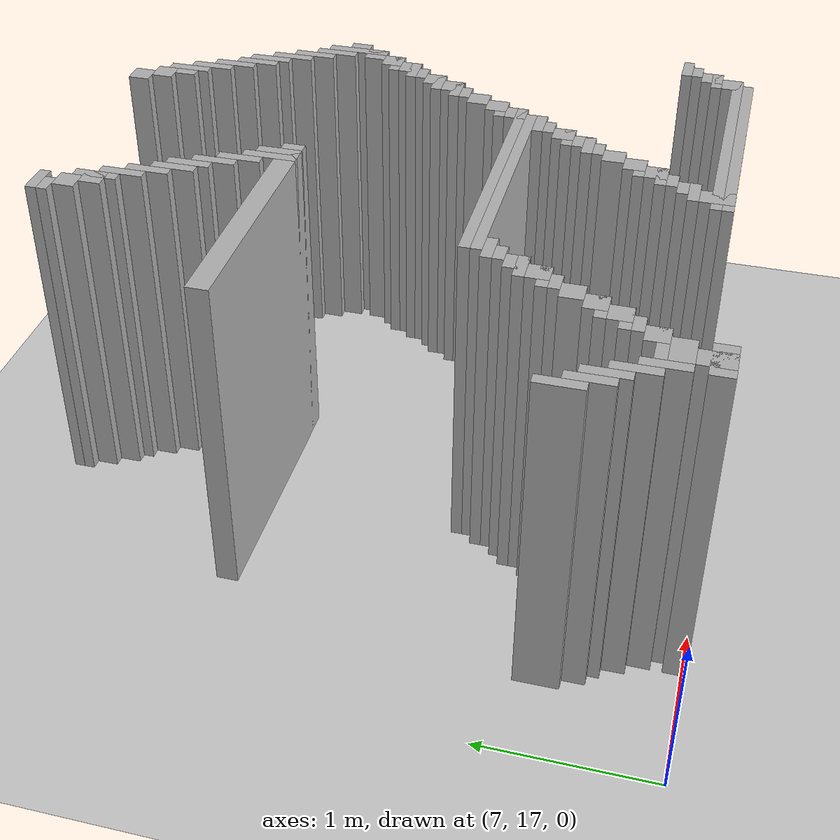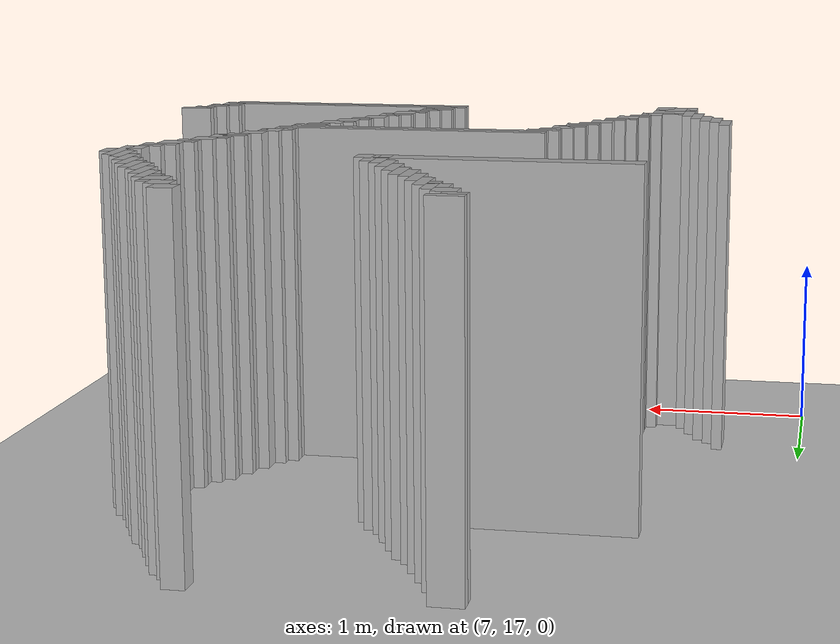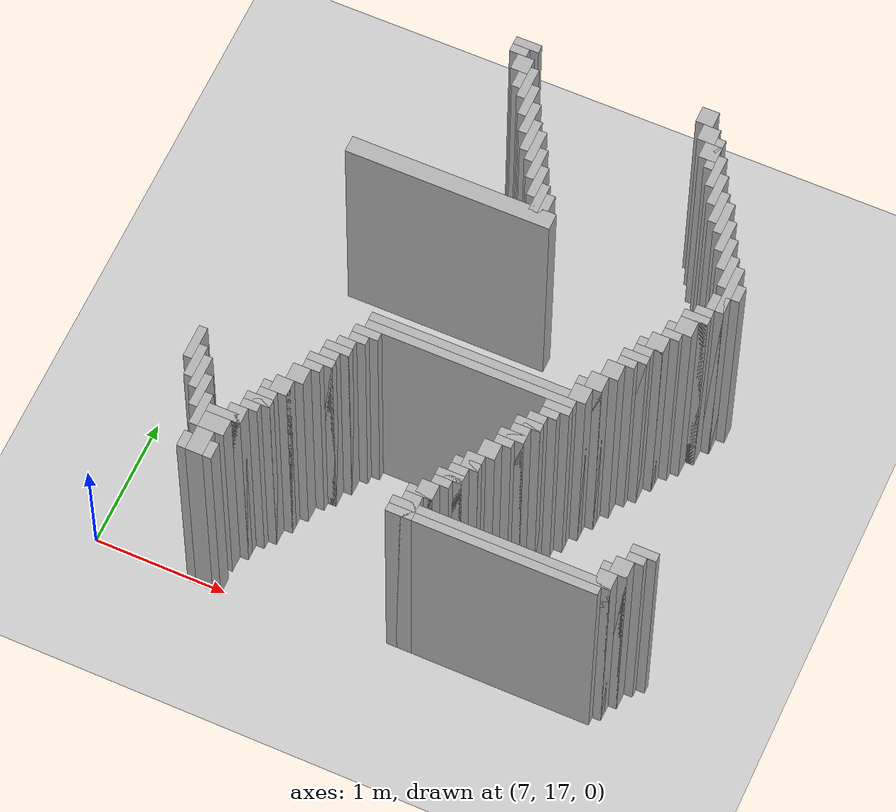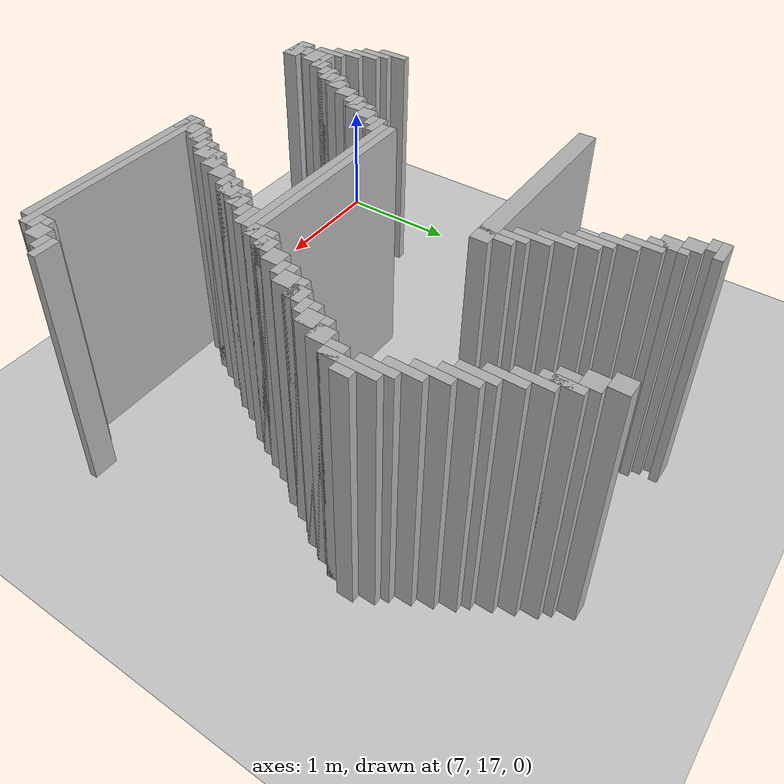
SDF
<sdf version="1.6">
 <world name="slam_world">
  <model name="ground_plane">
   <static>true</static>
   <link name="link">
    <collision name="collision">
     <geometry><plane><normal>0 0 1</normal><size>100 100</size></plane></geometry>
    </collision>
    <visual name="visual">
     <geometry><plane><normal>0 0 1</normal><size>100 100</size></plane></geometry>
     <material>
      <ambient>0.8 0.8 0.8 1</ambient>
      <diffuse>0.8 0.8 0.8 1</diffuse>
      <specular>0.8 0.8 0.8 1</specular>
     </material>
    </visual>
   </link>
  </model>
  <model name="wall_336">
   <static>true</static>
   <pose>8.585106382978722 20.840425531914892 1.0 0 0 0</pose>
   <link name="link">
    <collision name="collision">
     <geometry><box><size>0.19148936170212766 0.06382978723404255 2.0</size></box></geometry>
    </collision>
    <visual name="visual">
     <geometry><box><size>0.19148936170212766 0.06382978723404255 2.0</size></box></geometry>
     <material><ambient>0.5 0.5 0.5 1</ambient><diffuse>0.7 0.7 0.7 1</diffuse></material>
    </visual>
   </link>
  </model>
  <model name="wall_337">
   <static>true</static>
   <pose>9.957446808510637 20.80851063829787 1.0 0 0 0</pose>
   <link name="link">
    <collision name="collision">
     <geometry><box><size>0.1276595744680851 0.1276595744680851 2.0</size></box></geometry>
    </collision>
    <visual name="visual">
     <geometry><box><size>0.1276595744680851 0.1276595744680851 2.0</size></box></geometry>
     <material><ambient>0.5 0.5 0.5 1</ambient><diffuse>0.7 0.7 0.7 1</diffuse></material>
    </visual>
   </link>
  </model>
  <model name="wall_341">
   <static>true</static>
   <pose>8.553191489361701 20.77659574468085 1.0 0 0 0</pose>
   <link name="link">
    <collision name="collision">
     <geometry><box><size>0.1276595744680851 0.06382978723404255 2.0</size></box></geometry>
    </collision>
    <visual name="visual">
     <geometry><box><size>0.1276595744680851 0.06382978723404255 2.0</size></box></geometry>
     <material><ambient>0.5 0.5 0.5 1</ambient><diffuse>0.7 0.7 0.7 1</diffuse></material>
    </visual>
   </link>
  </model>
  <model name="wall_348">
   <static>true</static>
   <pose>8.617021276595745 20.680851063829785 1.0 0 0 0</pose>
   <link name="link">
    <collision name="collision">
     <geometry><box><size>0.1276595744680851 0.1276595744680851 2.0</size></box></geometry>
    </collision>
    <visual name="visual">
     <geometry><box><size>0.1276595744680851 0.1276595744680851 2.0</size></box></geometry>
     <material><ambient>0.5 0.5 0.5 1</ambient><diffuse>0.7 0.7 0.7 1</diffuse></material>
    </visual>
   </link>
  </model>
  <model name="wall_349">
   <static>true</static>
   <pose>10.02127659574468 20.680851063829785 1.0 0 0 0</pose>
   <link name="link">
    <collision name="collision">
     <geometry><box><size>0.1276595744680851 0.1276595744680851 2.0</size></box></geometry>
    </collision>
    <visual name="visual">
     <geometry><box><size>0.1276595744680851 0.1276595744680851 2.0</size></box></geometry>
     <material><ambient>0.5 0.5 0.5 1</ambient><diffuse>0.7 0.7 0.7 1</diffuse></material>
    </visual>
   </link>
  </model>
  <model name="wall_356">
   <static>true</static>
   <pose>8.712765957446807 20.5531914893617 1.0 0 0 0</pose>
   <link name="link">
    <collision name="collision">
     <geometry><box><size>0.06382978723404255 0.2553191489361702 2.0</size></box></geometry>
    </collision>
    <visual name="visual">
     <geometry><box><size>0.06382978723404255 0.2553191489361702 2.0</size></box></geometry>
     <material><ambient>0.5 0.5 0.5 1</ambient><diffuse>0.7 0.7 0.7 1</diffuse></material>
    </visual>
   </link>
  </model>
  <model name="wall_357">
   <static>true</static>
   <pose>10.117021276595743 20.5531914893617 1.0 0 0 0</pose>
   <link name="link">
    <collision name="collision">
     <geometry><box><size>0.06382978723404255 0.2553191489361702 2.0</size></box></geometry>
    </collision>
    <visual name="visual">
     <geometry><box><size>0.06382978723404255 0.2553191489361702 2.0</size></box></geometry>
     <material><ambient>0.5 0.5 0.5 1</ambient><diffuse>0.7 0.7 0.7 1</diffuse></material>
    </visual>
   </link>
  </model>
  <model name="wall_364">
   <static>true</static>
   <pose>8.680851063829786 20.5531914893617 1.0 0 0 0</pose>
   <link name="link">
    <collision name="collision">
     <geometry><box><size>0.1276595744680851 0.1276595744680851 2.0</size></box></geometry>
    </collision>
    <visual name="visual">
     <geometry><box><size>0.1276595744680851 0.1276595744680851 2.0</size></box></geometry>
     <material><ambient>0.5 0.5 0.5 1</ambient><diffuse>0.7 0.7 0.7 1</diffuse></material>
    </visual>
   </link>
  </model>
  <model name="wall_365">
   <static>true</static>
   <pose>10.085106382978722 20.5531914893617 1.0 0 0 0</pose>
   <link name="link">
    <collision name="collision">
     <geometry><box><size>0.1276595744680851 0.1276595744680851 2.0</size></box></geometry>
    </collision>
    <visual name="visual">
     <geometry><box><size>0.1276595744680851 0.1276595744680851 2.0</size></box></geometry>
     <material><ambient>0.5 0.5 0.5 1</ambient><diffuse>0.7 0.7 0.7 1</diffuse></material>
    </visual>
   </link>
  </model>
  <model name="wall_373">
   <static>true</static>
   <pose>8.77659574468085 20.425531914893615 1.0 0 0 0</pose>
   <link name="link">
    <collision name="collision">
     <geometry><box><size>0.06382978723404255 0.2553191489361702 2.0</size></box></geometry>
    </collision>
    <visual name="visual">
     <geometry><box><size>0.06382978723404255 0.2553191489361702 2.0</size></box></geometry>
     <material><ambient>0.5 0.5 0.5 1</ambient><diffuse>0.7 0.7 0.7 1</diffuse></material>
    </visual>
   </link>
  </model>
  <model name="wall_374">
   <static>true</static>
   <pose>10.180851063829786 20.425531914893615 1.0 0 0 0</pose>
   <link name="link">
    <collision name="collision">
     <geometry><box><size>0.06382978723404255 0.2553191489361702 2.0</size></box></geometry>
    </collision>
    <visual name="visual">
     <geometry><box><size>0.06382978723404255 0.2553191489361702 2.0</size></box></geometry>
     <material><ambient>0.5 0.5 0.5 1</ambient><diffuse>0.7 0.7 0.7 1</diffuse></material>
    </visual>
   </link>
  </model>
  <model name="wall_385">
   <static>true</static>
   <pose>8.840425531914892 20.29787234042553 1.0 0 0 0</pose>
   <link name="link">
    <collision name="collision">
     <geometry><box><size>0.06382978723404255 0.2553191489361702 2.0</size></box></geometry>
    </collision>
    <visual name="visual">
     <geometry><box><size>0.06382978723404255 0.2553191489361702 2.0</size></box></geometry>
     <material><ambient>0.5 0.5 0.5 1</ambient><diffuse>0.7 0.7 0.7 1</diffuse></material>
    </visual>
   </link>
  </model>
  <model name="wall_386">
   <static>true</static>
   <pose>10.24468085106383 20.29787234042553 1.0 0 0 0</pose>
   <link name="link">
    <collision name="collision">
     <geometry><box><size>0.06382978723404255 0.2553191489361702 2.0</size></box></geometry>
    </collision>
    <visual name="visual">
     <geometry><box><size>0.06382978723404255 0.2553191489361702 2.0</size></box></geometry>
     <material><ambient>0.5 0.5 0.5 1</ambient><diffuse>0.7 0.7 0.7 1</diffuse></material>
    </visual>
   </link>
  </model>
  <model name="wall_394">
   <static>true</static>
   <pose>8.904255319148936 20.170212765957444 1.0 0 0 0</pose>
   <link name="link">
    <collision name="collision">
     <geometry><box><size>0.06382978723404255 0.2553191489361702 2.0</size></box></geometry>
    </collision>
    <visual name="visual">
     <geometry><box><size>0.06382978723404255 0.2553191489361702 2.0</size></box></geometry>
     <material><ambient>0.5 0.5 0.5 1</ambient><diffuse>0.7 0.7 0.7 1</diffuse></material>
    </visual>
   </link>
  </model>
  <model name="wall_395">
   <static>true</static>
   <pose>10.308510638297872 20.170212765957444 1.0 0 0 0</pose>
   <link name="link">
    <collision name="collision">
     <geometry><box><size>0.06382978723404255 0.2553191489361702 2.0</size></box></geometry>
    </collision>
    <visual name="visual">
     <geometry><box><size>0.06382978723404255 0.2553191489361702 2.0</size></box></geometry>
     <material><ambient>0.5 0.5 0.5 1</ambient><diffuse>0.7 0.7 0.7 1</diffuse></material>
    </visual>
   </link>
  </model>
  <model name="wall_403">
   <static>true</static>
   <pose>8.968085106382977 20.106382978723403 1.0 0 0 0</pose>
   <link name="link">
    <collision name="collision">
     <geometry><box><size>0.06382978723404255 0.2553191489361702 2.0</size></box></geometry>
    </collision>
    <visual name="visual">
     <geometry><box><size>0.06382978723404255 0.2553191489361702 2.0</size></box></geometry>
     <material><ambient>0.5 0.5 0.5 1</ambient><diffuse>0.7 0.7 0.7 1</diffuse></material>
    </visual>
   </link>
  </model>
  <model name="wall_404">
   <static>true</static>
   <pose>10.372340425531915 20.106382978723403 1.0 0 0 0</pose>
   <link name="link">
    <collision name="collision">
     <geometry><box><size>0.06382978723404255 0.2553191489361702 2.0</size></box></geometry>
    </collision>
    <visual name="visual">
     <geometry><box><size>0.06382978723404255 0.2553191489361702 2.0</size></box></geometry>
     <material><ambient>0.5 0.5 0.5 1</ambient><diffuse>0.7 0.7 0.7 1</diffuse></material>
    </visual>
   </link>
  </model>
  <model name="wall_414">
   <static>true</static>
   <pose>9.03191489361702 19.978723404255316 1.0 0 0 0</pose>
   <link name="link">
    <collision name="collision">
     <geometry><box><size>0.06382978723404255 0.2553191489361702 2.0</size></box></geometry>
    </collision>
    <visual name="visual">
     <geometry><box><size>0.06382978723404255 0.2553191489361702 2.0</size></box></geometry>
     <material><ambient>0.5 0.5 0.5 1</ambient><diffuse>0.7 0.7 0.7 1</diffuse></material>
    </visual>
   </link>
  </model>
  <model name="wall_415">
   <static>true</static>
   <pose>10.436170212765957 19.978723404255316 1.0 0 0 0</pose>
   <link name="link">
    <collision name="collision">
     <geometry><box><size>0.06382978723404255 0.2553191489361702 2.0</size></box></geometry>
    </collision>
    <visual name="visual">
     <geometry><box><size>0.06382978723404255 0.2553191489361702 2.0</size></box></geometry>
     <material><ambient>0.5 0.5 0.5 1</ambient><diffuse>0.7 0.7 0.7 1</diffuse></material>
    </visual>
   </link>
  </model>
  <model name="wall_425">
   <static>true</static>
   <pose>9.095744680851062 19.851063829787233 1.0 0 0 0</pose>
   <link name="link">
    <collision name="collision">
     <geometry><box><size>0.06382978723404255 0.2553191489361702 2.0</size></box></geometry>
    </collision>
    <visual name="visual">
     <geometry><box><size>0.06382978723404255 0.2553191489361702 2.0</size></box></geometry>
     <material><ambient>0.5 0.5 0.5 1</ambient><diffuse>0.7 0.7 0.7 1</diffuse></material>
    </visual>
   </link>
  </model>
  <model name="wall_426">
   <static>true</static>
   <pose>10.5 19.851063829787233 1.0 0 0 0</pose>
   <link name="link">
    <collision name="collision">
     <geometry><box><size>0.06382978723404255 0.2553191489361702 2.0</size></box></geometry>
    </collision>
    <visual name="visual">
     <geometry><box><size>0.06382978723404255 0.2553191489361702 2.0</size></box></geometry>
     <material><ambient>0.5 0.5 0.5 1</ambient><diffuse>0.7 0.7 0.7 1</diffuse></material>
    </visual>
   </link>
  </model>
  <model name="wall_434">
   <static>true</static>
   <pose>9.159574468085106 19.691489361702125 1.0 0 0 0</pose>
   <link name="link">
    <collision name="collision">
     <geometry><box><size>0.06382978723404255 0.3191489361702127 2.0</size></box></geometry>
    </collision>
    <visual name="visual">
     <geometry><box><size>0.06382978723404255 0.3191489361702127 2.0</size></box></geometry>
     <material><ambient>0.5 0.5 0.5 1</ambient><diffuse>0.7 0.7 0.7 1</diffuse></material>
    </visual>
   </link>
  </model>
  <model name="wall_435">
   <static>true</static>
   <pose>10.563829787234042 19.723404255319146 1.0 0 0 0</pose>
   <link name="link">
    <collision name="collision">
     <geometry><box><size>0.06382978723404255 0.2553191489361702 2.0</size></box></geometry>
    </collision>
    <visual name="visual">
     <geometry><box><size>0.06382978723404255 0.2553191489361702 2.0</size></box></geometry>
     <material><ambient>0.5 0.5 0.5 1</ambient><diffuse>0.7 0.7 0.7 1</diffuse></material>
    </visual>
   </link>
  </model>
  <model name="wall_443">
   <static>true</static>
   <pose>9.223404255319148 19.659574468085104 1.0 0 0 0</pose>
   <link name="link">
    <collision name="collision">
     <geometry><box><size>0.06382978723404255 0.2553191489361702 2.0</size></box></geometry>
    </collision>
    <visual name="visual">
     <geometry><box><size>0.06382978723404255 0.2553191489361702 2.0</size></box></geometry>
     <material><ambient>0.5 0.5 0.5 1</ambient><diffuse>0.7 0.7 0.7 1</diffuse></material>
    </visual>
   </link>
  </model>
  <model name="wall_444">
   <static>true</static>
   <pose>10.627659574468085 19.595744680851062 1.0 0 0 0</pose>
   <link name="link">
    <collision name="collision">
     <geometry><box><size>0.06382978723404255 0.3829787234042553 2.0</size></box></geometry>
    </collision>
    <visual name="visual">
     <geometry><box><size>0.06382978723404255 0.3829787234042553 2.0</size></box></geometry>
     <material><ambient>0.5 0.5 0.5 1</ambient><diffuse>0.7 0.7 0.7 1</diffuse></material>
    </visual>
   </link>
  </model>
  <model name="wall_454">
   <static>true</static>
   <pose>8.553191489361701 19.595744680851062 1.0 0 0 0</pose>
   <link name="link">
    <collision name="collision">
     <geometry><box><size>1.5319148936170213 0.1276595744680851 2.0</size></box></geometry>
    </collision>
    <visual name="visual">
     <geometry><box><size>1.5319148936170213 0.1276595744680851 2.0</size></box></geometry>
     <material><ambient>0.5 0.5 0.5 1</ambient><diffuse>0.7 0.7 0.7 1</diffuse></material>
    </visual>
   </link>
  </model>
  <model name="wall_455">
   <static>true</static>
   <pose>10.691489361702127 19.595744680851062 1.0 0 0 0</pose>
   <link name="link">
    <collision name="collision">
     <geometry><box><size>0.06382978723404255 0.1276595744680851 2.0</size></box></geometry>
    </collision>
    <visual name="visual">
     <geometry><box><size>0.06382978723404255 0.1276595744680851 2.0</size></box></geometry>
     <material><ambient>0.5 0.5 0.5 1</ambient><diffuse>0.7 0.7 0.7 1</diffuse></material>
    </visual>
   </link>
  </model>
  <model name="wall_464">
   <static>true</static>
   <pose>10.595744680851062 19.468085106382976 1.0 0 0 0</pose>
   <link name="link">
    <collision name="collision">
     <geometry><box><size>0.1276595744680851 0.1276595744680851 2.0</size></box></geometry>
    </collision>
    <visual name="visual">
     <geometry><box><size>0.1276595744680851 0.1276595744680851 2.0</size></box></geometry>
     <material><ambient>0.5 0.5 0.5 1</ambient><diffuse>0.7 0.7 0.7 1</diffuse></material>
    </visual>
   </link>
  </model>
  <model name="wall_471">
   <static>true</static>
   <pose>10.53191489361702 19.340425531914892 1.0 0 0 0</pose>
   <link name="link">
    <collision name="collision">
     <geometry><box><size>0.1276595744680851 0.1276595744680851 2.0</size></box></geometry>
    </collision>
    <visual name="visual">
     <geometry><box><size>0.1276595744680851 0.1276595744680851 2.0</size></box></geometry>
     <material><ambient>0.5 0.5 0.5 1</ambient><diffuse>0.7 0.7 0.7 1</diffuse></material>
    </visual>
   </link>
  </model>
  <model name="wall_478">
   <static>true</static>
   <pose>10.5 19.30851063829787 1.0 0 0 0</pose>
   <link name="link">
    <collision name="collision">
     <geometry><box><size>0.19148936170212766 0.06382978723404255 2.0</size></box></geometry>
    </collision>
    <visual name="visual">
     <geometry><box><size>0.19148936170212766 0.06382978723404255 2.0</size></box></geometry>
     <material><ambient>0.5 0.5 0.5 1</ambient><diffuse>0.7 0.7 0.7 1</diffuse></material>
    </visual>
   </link>
  </model>
  <model name="wall_485">
   <static>true</static>
   <pose>10.468085106382977 19.212765957446805 1.0 0 0 0</pose>
   <link name="link">
    <collision name="collision">
     <geometry><box><size>0.1276595744680851 0.1276595744680851 2.0</size></box></geometry>
    </collision>
    <visual name="visual">
     <geometry><box><size>0.1276595744680851 0.1276595744680851 2.0</size></box></geometry>
     <material><ambient>0.5 0.5 0.5 1</ambient><diffuse>0.7 0.7 0.7 1</diffuse></material>
    </visual>
   </link>
  </model>
  <model name="wall_492">
   <static>true</static>
   <pose>10.436170212765957 19.180851063829785 1.0 0 0 0</pose>
   <link name="link">
    <collision name="collision">
     <geometry><box><size>0.19148936170212766 0.06382978723404255 2.0</size></box></geometry>
    </collision>
    <visual name="visual">
     <geometry><box><size>0.19148936170212766 0.06382978723404255 2.0</size></box></geometry>
     <material><ambient>0.5 0.5 0.5 1</ambient><diffuse>0.7 0.7 0.7 1</diffuse></material>
    </visual>
   </link>
  </model>
  <model name="wall_498">
   <static>true</static>
   <pose>10.404255319148936 19.117021276595743 1.0 0 0 0</pose>
   <link name="link">
    <collision name="collision">
     <geometry><box><size>0.1276595744680851 0.06382978723404255 2.0</size></box></geometry>
    </collision>
    <visual name="visual">
     <geometry><box><size>0.1276595744680851 0.06382978723404255 2.0</size></box></geometry>
     <material><ambient>0.5 0.5 0.5 1</ambient><diffuse>0.7 0.7 0.7 1</diffuse></material>
    </visual>
   </link>
  </model>
  <model name="wall_505">
   <static>true</static>
   <pose>10.340425531914892 19.02127659574468 1.0 0 0 0</pose>
   <link name="link">
    <collision name="collision">
     <geometry><box><size>0.1276595744680851 0.1276595744680851 2.0</size></box></geometry>
    </collision>
    <visual name="visual">
     <geometry><box><size>0.1276595744680851 0.1276595744680851 2.0</size></box></geometry>
     <material><ambient>0.5 0.5 0.5 1</ambient><diffuse>0.7 0.7 0.7 1</diffuse></material>
    </visual>
   </link>
  </model>
  <model name="wall_512">
   <static>true</static>
   <pose>10.308510638297872 18.98936170212766 1.0 0 0 0</pose>
   <link name="link">
    <collision name="collision">
     <geometry><box><size>0.19148936170212766 0.06382978723404255 2.0</size></box></geometry>
    </collision>
    <visual name="visual">
     <geometry><box><size>0.19148936170212766 0.06382978723404255 2.0</size></box></geometry>
     <material><ambient>0.5 0.5 0.5 1</ambient><diffuse>0.7 0.7 0.7 1</diffuse></material>
    </visual>
   </link>
  </model>
  <model name="wall_518">
   <static>true</static>
   <pose>10.27659574468085 18.893617021276594 1.0 0 0 0</pose>
   <link name="link">
    <collision name="collision">
     <geometry><box><size>0.1276595744680851 0.1276595744680851 2.0</size></box></geometry>
    </collision>
    <visual name="visual">
     <geometry><box><size>0.1276595744680851 0.1276595744680851 2.0</size></box></geometry>
     <material><ambient>0.5 0.5 0.5 1</ambient><diffuse>0.7 0.7 0.7 1</diffuse></material>
    </visual>
   </link>
  </model>
  <model name="wall_525">
   <static>true</static>
   <pose>10.24468085106383 18.861702127659573 1.0 0 0 0</pose>
   <link name="link">
    <collision name="collision">
     <geometry><box><size>0.19148936170212766 0.06382978723404255 2.0</size></box></geometry>
    </collision>
    <visual name="visual">
     <geometry><box><size>0.19148936170212766 0.06382978723404255 2.0</size></box></geometry>
     <material><ambient>0.5 0.5 0.5 1</ambient><diffuse>0.7 0.7 0.7 1</diffuse></material>
    </visual>
   </link>
  </model>
  <model name="wall_531">
   <static>true</static>
   <pose>10.212765957446807 18.79787234042553 1.0 0 0 0</pose>
   <link name="link">
    <collision name="collision">
     <geometry><box><size>0.1276595744680851 0.06382978723404255 2.0</size></box></geometry>
    </collision>
    <visual name="visual">
     <geometry><box><size>0.1276595744680851 0.06382978723404255 2.0</size></box></geometry>
     <material><ambient>0.5 0.5 0.5 1</ambient><diffuse>0.7 0.7 0.7 1</diffuse></material>
    </visual>
   </link>
  </model>
  <model name="wall_538">
   <static>true</static>
   <pose>10.148936170212766 18.702127659574465 1.0 0 0 0</pose>
   <link name="link">
    <collision name="collision">
     <geometry><box><size>0.1276595744680851 0.1276595744680851 2.0</size></box></geometry>
    </collision>
    <visual name="visual">
     <geometry><box><size>0.1276595744680851 0.1276595744680851 2.0</size></box></geometry>
     <material><ambient>0.5 0.5 0.5 1</ambient><diffuse>0.7 0.7 0.7 1</diffuse></material>
    </visual>
   </link>
  </model>
  <model name="wall_545">
   <static>true</static>
   <pose>10.085106382978722 18.574468085106382 1.0 0 0 0</pose>
   <link name="link">
    <collision name="collision">
     <geometry><box><size>0.1276595744680851 0.1276595744680851 2.0</size></box></geometry>
    </collision>
    <visual name="visual">
     <geometry><box><size>0.1276595744680851 0.1276595744680851 2.0</size></box></geometry>
     <material><ambient>0.5 0.5 0.5 1</ambient><diffuse>0.7 0.7 0.7 1</diffuse></material>
    </visual>
   </link>
  </model>
  <model name="wall_552">
   <static>true</static>
   <pose>10.053191489361701 18.54255319148936 1.0 0 0 0</pose>
   <link name="link">
    <collision name="collision">
     <geometry><box><size>0.19148936170212766 0.06382978723404255 2.0</size></box></geometry>
    </collision>
    <visual name="visual">
     <geometry><box><size>0.19148936170212766 0.06382978723404255 2.0</size></box></geometry>
     <material><ambient>0.5 0.5 0.5 1</ambient><diffuse>0.7 0.7 0.7 1</diffuse></material>
    </visual>
   </link>
  </model>
  <model name="wall_558">
   <static>true</static>
   <pose>10.02127659574468 18.446808510638295 1.0 0 0 0</pose>
   <link name="link">
    <collision name="collision">
     <geometry><box><size>0.1276595744680851 0.1276595744680851 2.0</size></box></geometry>
    </collision>
    <visual name="visual">
     <geometry><box><size>0.1276595744680851 0.1276595744680851 2.0</size></box></geometry>
     <material><ambient>0.5 0.5 0.5 1</ambient><diffuse>0.7 0.7 0.7 1</diffuse></material>
    </visual>
   </link>
  </model>
  <model name="wall_566">
   <static>true</static>
   <pose>9.287234042553191 18.414893617021274 1.0 0 0 0</pose>
   <link name="link">
    <collision name="collision">
     <geometry><box><size>1.5957446808510638 0.06382978723404255 2.0</size></box></geometry>
    </collision>
    <visual name="visual">
     <geometry><box><size>1.5957446808510638 0.06382978723404255 2.0</size></box></geometry>
     <material><ambient>0.5 0.5 0.5 1</ambient><diffuse>0.7 0.7 0.7 1</diffuse></material>
    </visual>
   </link>
  </model>
  <model name="wall_574">
   <static>true</static>
   <pose>9.25531914893617 18.351063829787233 1.0 0 0 0</pose>
   <link name="link">
    <collision name="collision">
     <geometry><box><size>1.5319148936170213 0.06382978723404255 2.0</size></box></geometry>
    </collision>
    <visual name="visual">
     <geometry><box><size>1.5319148936170213 0.06382978723404255 2.0</size></box></geometry>
     <material><ambient>0.5 0.5 0.5 1</ambient><diffuse>0.7 0.7 0.7 1</diffuse></material>
    </visual>
   </link>
  </model>
  <model name="wall_578">
   <static>true</static>
   <pose>8.52127659574468 18.28723404255319 1.0 0 0 0</pose>
   <link name="link">
    <collision name="collision">
     <geometry><box><size>0.19148936170212766 0.06382978723404255 2.0</size></box></geometry>
    </collision>
    <visual name="visual">
     <geometry><box><size>0.19148936170212766 0.06382978723404255 2.0</size></box></geometry>
     <material><ambient>0.5 0.5 0.5 1</ambient><diffuse>0.7 0.7 0.7 1</diffuse></material>
    </visual>
   </link>
  </model>
  <model name="wall_579">
   <static>true</static>
   <pose>9.925531914893616 18.28723404255319 1.0 0 0 0</pose>
   <link name="link">
    <collision name="collision">
     <geometry><box><size>0.19148936170212766 0.06382978723404255 2.0</size></box></geometry>
    </collision>
    <visual name="visual">
     <geometry><box><size>0.19148936170212766 0.06382978723404255 2.0</size></box></geometry>
     <material><ambient>0.5 0.5 0.5 1</ambient><diffuse>0.7 0.7 0.7 1</diffuse></material>
    </visual>
   </link>
  </model>
  <model name="wall_584">
   <static>true</static>
   <pose>8.48936170212766 18.223404255319146 1.0 0 0 0</pose>
   <link name="link">
    <collision name="collision">
     <geometry><box><size>0.1276595744680851 0.06382978723404255 2.0</size></box></geometry>
    </collision>
    <visual name="visual">
     <geometry><box><size>0.1276595744680851 0.06382978723404255 2.0</size></box></geometry>
     <material><ambient>0.5 0.5 0.5 1</ambient><diffuse>0.7 0.7 0.7 1</diffuse></material>
    </visual>
   </link>
  </model>
  <model name="wall_585">
   <static>true</static>
   <pose>9.893617021276595 18.223404255319146 1.0 0 0 0</pose>
   <link name="link">
    <collision name="collision">
     <geometry><box><size>0.1276595744680851 0.06382978723404255 2.0</size></box></geometry>
    </collision>
    <visual name="visual">
     <geometry><box><size>0.1276595744680851 0.06382978723404255 2.0</size></box></geometry>
     <material><ambient>0.5 0.5 0.5 1</ambient><diffuse>0.7 0.7 0.7 1</diffuse></material>
    </visual>
   </link>
  </model>
  <model name="wall_589">
   <static>true</static>
   <pose>8.425531914893616 18.127659574468083 1.0 0 0 0</pose>
   <link name="link">
    <collision name="collision">
     <geometry><box><size>0.1276595744680851 0.1276595744680851 2.0</size></box></geometry>
    </collision>
    <visual name="visual">
     <geometry><box><size>0.1276595744680851 0.1276595744680851 2.0</size></box></geometry>
     <material><ambient>0.5 0.5 0.5 1</ambient><diffuse>0.7 0.7 0.7 1</diffuse></material>
    </visual>
   </link>
  </model>
  <model name="wall_590">
   <static>true</static>
   <pose>9.829787234042552 18.127659574468083 1.0 0 0 0</pose>
   <link name="link">
    <collision name="collision">
     <geometry><box><size>0.1276595744680851 0.1276595744680851 2.0</size></box></geometry>
    </collision>
    <visual name="visual">
     <geometry><box><size>0.1276595744680851 0.1276595744680851 2.0</size></box></geometry>
     <material><ambient>0.5 0.5 0.5 1</ambient><diffuse>0.7 0.7 0.7 1</diffuse></material>
    </visual>
   </link>
  </model>
  <model name="wall_596">
   <static>true</static>
   <pose>8.393617021276595 18.095744680851062 1.0 0 0 0</pose>
   <link name="link">
    <collision name="collision">
     <geometry><box><size>0.19148936170212766 0.06382978723404255 2.0</size></box></geometry>
    </collision>
    <visual name="visual">
     <geometry><box><size>0.19148936170212766 0.06382978723404255 2.0</size></box></geometry>
     <material><ambient>0.5 0.5 0.5 1</ambient><diffuse>0.7 0.7 0.7 1</diffuse></material>
    </visual>
   </link>
  </model>
  <model name="wall_597">
   <static>true</static>
   <pose>9.797872340425531 18.095744680851062 1.0 0 0 0</pose>
   <link name="link">
    <collision name="collision">
     <geometry><box><size>0.19148936170212766 0.06382978723404255 2.0</size></box></geometry>
    </collision>
    <visual name="visual">
     <geometry><box><size>0.19148936170212766 0.06382978723404255 2.0</size></box></geometry>
     <material><ambient>0.5 0.5 0.5 1</ambient><diffuse>0.7 0.7 0.7 1</diffuse></material>
    </visual>
   </link>
  </model>
  <model name="wall_602">
   <static>true</static>
   <pose>8.361702127659575 18.0 1.0 0 0 0</pose>
   <link name="link">
    <collision name="collision">
     <geometry><box><size>0.1276595744680851 0.1276595744680851 2.0</size></box></geometry>
    </collision>
    <visual name="visual">
     <geometry><box><size>0.1276595744680851 0.1276595744680851 2.0</size></box></geometry>
     <material><ambient>0.5 0.5 0.5 1</ambient><diffuse>0.7 0.7 0.7 1</diffuse></material>
    </visual>
   </link>
  </model>
  <model name="wall_603">
   <static>true</static>
   <pose>9.76595744680851 18.0 1.0 0 0 0</pose>
   <link name="link">
    <collision name="collision">
     <geometry><box><size>0.1276595744680851 0.1276595744680851 2.0</size></box></geometry>
    </collision>
    <visual name="visual">
     <geometry><box><size>0.1276595744680851 0.1276595744680851 2.0</size></box></geometry>
     <material><ambient>0.5 0.5 0.5 1</ambient><diffuse>0.7 0.7 0.7 1</diffuse></material>
    </visual>
   </link>
  </model>
  <model name="wall_608">
   <static>true</static>
   <pose>8.329787234042552 17.968085106382976 1.0 0 0 0</pose>
   <link name="link">
    <collision name="collision">
     <geometry><box><size>0.19148936170212766 0.06382978723404255 2.0</size></box></geometry>
    </collision>
    <visual name="visual">
     <geometry><box><size>0.19148936170212766 0.06382978723404255 2.0</size></box></geometry>
     <material><ambient>0.5 0.5 0.5 1</ambient><diffuse>0.7 0.7 0.7 1</diffuse></material>
    </visual>
   </link>
  </model>
  <model name="wall_609">
   <static>true</static>
   <pose>9.734042553191488 17.968085106382976 1.0 0 0 0</pose>
   <link name="link">
    <collision name="collision">
     <geometry><box><size>0.19148936170212766 0.06382978723404255 2.0</size></box></geometry>
    </collision>
    <visual name="visual">
     <geometry><box><size>0.19148936170212766 0.06382978723404255 2.0</size></box></geometry>
     <material><ambient>0.5 0.5 0.5 1</ambient><diffuse>0.7 0.7 0.7 1</diffuse></material>
    </visual>
   </link>
  </model>
  <model name="wall_613">
   <static>true</static>
   <pose>8.297872340425531 17.904255319148934 1.0 0 0 0</pose>
   <link name="link">
    <collision name="collision">
     <geometry><box><size>0.1276595744680851 0.06382978723404255 2.0</size></box></geometry>
    </collision>
    <visual name="visual">
     <geometry><box><size>0.1276595744680851 0.06382978723404255 2.0</size></box></geometry>
     <material><ambient>0.5 0.5 0.5 1</ambient><diffuse>0.7 0.7 0.7 1</diffuse></material>
    </visual>
   </link>
  </model>
  <model name="wall_614">
   <static>true</static>
   <pose>9.702127659574467 17.904255319148934 1.0 0 0 0</pose>
   <link name="link">
    <collision name="collision">
     <geometry><box><size>0.1276595744680851 0.06382978723404255 2.0</size></box></geometry>
    </collision>
    <visual name="visual">
     <geometry><box><size>0.1276595744680851 0.06382978723404255 2.0</size></box></geometry>
     <material><ambient>0.5 0.5 0.5 1</ambient><diffuse>0.7 0.7 0.7 1</diffuse></material>
    </visual>
   </link>
  </model>
  <model name="wall_617">
   <static>true</static>
   <pose>7.499999999999999 17.74468085106383 1.0 0 0 0</pose>
   <link name="link">
    <collision name="collision">
     <geometry><box><size>0.06382978723404255 0.2553191489361702 2.0</size></box></geometry>
    </collision>
    <visual name="visual">
     <geometry><box><size>0.06382978723404255 0.2553191489361702 2.0</size></box></geometry>
     <material><ambient>0.5 0.5 0.5 1</ambient><diffuse>0.7 0.7 0.7 1</diffuse></material>
    </visual>
   </link>
  </model>
  <model name="wall_618">
   <static>true</static>
   <pose>8.23404255319149 17.80851063829787 1.0 0 0 0</pose>
   <link name="link">
    <collision name="collision">
     <geometry><box><size>0.1276595744680851 0.1276595744680851 2.0</size></box></geometry>
    </collision>
    <visual name="visual">
     <geometry><box><size>0.1276595744680851 0.1276595744680851 2.0</size></box></geometry>
     <material><ambient>0.5 0.5 0.5 1</ambient><diffuse>0.7 0.7 0.7 1</diffuse></material>
    </visual>
   </link>
  </model>
  <model name="wall_619">
   <static>true</static>
   <pose>9.638297872340425 17.80851063829787 1.0 0 0 0</pose>
   <link name="link">
    <collision name="collision">
     <geometry><box><size>0.1276595744680851 0.1276595744680851 2.0</size></box></geometry>
    </collision>
    <visual name="visual">
     <geometry><box><size>0.1276595744680851 0.1276595744680851 2.0</size></box></geometry>
     <material><ambient>0.5 0.5 0.5 1</ambient><diffuse>0.7 0.7 0.7 1</diffuse></material>
    </visual>
   </link>
  </model>
  <model name="wall_624">
   <static>true</static>
   <pose>7.563829787234042 17.617021276595743 1.0 0 0 0</pose>
   <link name="link">
    <collision name="collision">
     <geometry><box><size>0.06382978723404255 0.2553191489361702 2.0</size></box></geometry>
    </collision>
    <visual name="visual">
     <geometry><box><size>0.06382978723404255 0.2553191489361702 2.0</size></box></geometry>
     <material><ambient>0.5 0.5 0.5 1</ambient><diffuse>0.7 0.7 0.7 1</diffuse></material>
    </visual>
   </link>
  </model>
  <model name="wall_625">
   <static>true</static>
   <pose>8.170212765957446 17.680851063829785 1.0 0 0 0</pose>
   <link name="link">
    <collision name="collision">
     <geometry><box><size>0.1276595744680851 0.1276595744680851 2.0</size></box></geometry>
    </collision>
    <visual name="visual">
     <geometry><box><size>0.1276595744680851 0.1276595744680851 2.0</size></box></geometry>
     <material><ambient>0.5 0.5 0.5 1</ambient><diffuse>0.7 0.7 0.7 1</diffuse></material>
    </visual>
   </link>
  </model>
  <model name="wall_626">
   <static>true</static>
   <pose>9.574468085106382 17.680851063829785 1.0 0 0 0</pose>
   <link name="link">
    <collision name="collision">
     <geometry><box><size>0.1276595744680851 0.1276595744680851 2.0</size></box></geometry>
    </collision>
    <visual name="visual">
     <geometry><box><size>0.1276595744680851 0.1276595744680851 2.0</size></box></geometry>
     <material><ambient>0.5 0.5 0.5 1</ambient><diffuse>0.7 0.7 0.7 1</diffuse></material>
    </visual>
   </link>
  </model>
  <model name="wall_631">
   <static>true</static>
   <pose>7.627659574468084 17.5531914893617 1.0 0 0 0</pose>
   <link name="link">
    <collision name="collision">
     <geometry><box><size>0.06382978723404255 0.2553191489361702 2.0</size></box></geometry>
    </collision>
    <visual name="visual">
     <geometry><box><size>0.06382978723404255 0.2553191489361702 2.0</size></box></geometry>
     <material><ambient>0.5 0.5 0.5 1</ambient><diffuse>0.7 0.7 0.7 1</diffuse></material>
    </visual>
   </link>
  </model>
  <model name="wall_632">
   <static>true</static>
   <pose>8.138297872340425 17.648936170212764 1.0 0 0 0</pose>
   <link name="link">
    <collision name="collision">
     <geometry><box><size>0.19148936170212766 0.06382978723404255 2.0</size></box></geometry>
    </collision>
    <visual name="visual">
     <geometry><box><size>0.19148936170212766 0.06382978723404255 2.0</size></box></geometry>
     <material><ambient>0.5 0.5 0.5 1</ambient><diffuse>0.7 0.7 0.7 1</diffuse></material>
    </visual>
   </link>
  </model>
  <model name="wall_633">
   <static>true</static>
   <pose>9.542553191489361 17.648936170212764 1.0 0 0 0</pose>
   <link name="link">
    <collision name="collision">
     <geometry><box><size>0.19148936170212766 0.06382978723404255 2.0</size></box></geometry>
    </collision>
    <visual name="visual">
     <geometry><box><size>0.19148936170212766 0.06382978723404255 2.0</size></box></geometry>
     <material><ambient>0.5 0.5 0.5 1</ambient><diffuse>0.7 0.7 0.7 1</diffuse></material>
    </visual>
   </link>
  </model>
  <model name="wall_637">
   <static>true</static>
   <pose>8.106382978723403 17.5531914893617 1.0 0 0 0</pose>
   <link name="link">
    <collision name="collision">
     <geometry><box><size>0.1276595744680851 0.1276595744680851 2.0</size></box></geometry>
    </collision>
    <visual name="visual">
     <geometry><box><size>0.1276595744680851 0.1276595744680851 2.0</size></box></geometry>
     <material><ambient>0.5 0.5 0.5 1</ambient><diffuse>0.7 0.7 0.7 1</diffuse></material>
    </visual>
   </link>
  </model>
  <model name="wall_638">
   <static>true</static>
   <pose>9.51063829787234 17.5531914893617 1.0 0 0 0</pose>
   <link name="link">
    <collision name="collision">
     <geometry><box><size>0.1276595744680851 0.1276595744680851 2.0</size></box></geometry>
    </collision>
    <visual name="visual">
     <geometry><box><size>0.1276595744680851 0.1276595744680851 2.0</size></box></geometry>
     <material><ambient>0.5 0.5 0.5 1</ambient><diffuse>0.7 0.7 0.7 1</diffuse></material>
    </visual>
   </link>
  </model>
  <model name="wall_641">
   <static>true</static>
   <pose>7.691489361702127 17.425531914893615 1.0 0 0 0</pose>
   <link name="link">
    <collision name="collision">
     <geometry><box><size>0.06382978723404255 0.2553191489361702 2.0</size></box></geometry>
    </collision>
    <visual name="visual">
     <geometry><box><size>0.06382978723404255 0.2553191489361702 2.0</size></box></geometry>
     <material><ambient>0.5 0.5 0.5 1</ambient><diffuse>0.7 0.7 0.7 1</diffuse></material>
    </visual>
   </link>
  </model>
  <model name="wall_642">
   <static>true</static>
   <pose>8.074468085106382 17.52127659574468 1.0 0 0 0</pose>
   <link name="link">
    <collision name="collision">
     <geometry><box><size>0.19148936170212766 0.06382978723404255 2.0</size></box></geometry>
    </collision>
    <visual name="visual">
     <geometry><box><size>0.19148936170212766 0.06382978723404255 2.0</size></box></geometry>
     <material><ambient>0.5 0.5 0.5 1</ambient><diffuse>0.7 0.7 0.7 1</diffuse></material>
    </visual>
   </link>
  </model>
  <model name="wall_643">
   <static>true</static>
   <pose>9.478723404255318 17.52127659574468 1.0 0 0 0</pose>
   <link name="link">
    <collision name="collision">
     <geometry><box><size>0.19148936170212766 0.06382978723404255 2.0</size></box></geometry>
    </collision>
    <visual name="visual">
     <geometry><box><size>0.19148936170212766 0.06382978723404255 2.0</size></box></geometry>
     <material><ambient>0.5 0.5 0.5 1</ambient><diffuse>0.7 0.7 0.7 1</diffuse></material>
    </visual>
   </link>
  </model>
  <model name="wall_644">
   <static>true</static>
   <pose>10.882978723404255 17.52127659574468 1.0 0 0 0</pose>
   <link name="link">
    <collision name="collision">
     <geometry><box><size>0.19148936170212766 0.06382978723404255 2.0</size></box></geometry>
    </collision>
    <visual name="visual">
     <geometry><box><size>0.19148936170212766 0.06382978723404255 2.0</size></box></geometry>
     <material><ambient>0.5 0.5 0.5 1</ambient><diffuse>0.7 0.7 0.7 1</diffuse></material>
    </visual>
   </link>
  </model>
  <model name="wall_647">
   <static>true</static>
   <pose>8.042553191489361 17.457446808510635 1.0 0 0 0</pose>
   <link name="link">
    <collision name="collision">
     <geometry><box><size>0.1276595744680851 0.06382978723404255 2.0</size></box></geometry>
    </collision>
    <visual name="visual">
     <geometry><box><size>0.1276595744680851 0.06382978723404255 2.0</size></box></geometry>
     <material><ambient>0.5 0.5 0.5 1</ambient><diffuse>0.7 0.7 0.7 1</diffuse></material>
    </visual>
   </link>
  </model>
  <model name="wall_648">
   <static>true</static>
   <pose>9.446808510638297 17.457446808510635 1.0 0 0 0</pose>
   <link name="link">
    <collision name="collision">
     <geometry><box><size>0.1276595744680851 0.06382978723404255 2.0</size></box></geometry>
    </collision>
    <visual name="visual">
     <geometry><box><size>0.1276595744680851 0.06382978723404255 2.0</size></box></geometry>
     <material><ambient>0.5 0.5 0.5 1</ambient><diffuse>0.7 0.7 0.7 1</diffuse></material>
    </visual>
   </link>
  </model>
  <model name="wall_649">
   <static>true</static>
   <pose>10.851063829787233 17.457446808510635 1.0 0 0 0</pose>
   <link name="link">
    <collision name="collision">
     <geometry><box><size>0.1276595744680851 0.06382978723404255 2.0</size></box></geometry>
    </collision>
    <visual name="visual">
     <geometry><box><size>0.1276595744680851 0.06382978723404255 2.0</size></box></geometry>
     <material><ambient>0.5 0.5 0.5 1</ambient><diffuse>0.7 0.7 0.7 1</diffuse></material>
    </visual>
   </link>
  </model>
  <model name="wall_651">
   <static>true</static>
   <pose>7.755319148936169 17.29787234042553 1.0 0 0 0</pose>
   <link name="link">
    <collision name="collision">
     <geometry><box><size>0.06382978723404255 0.2553191489361702 2.0</size></box></geometry>
    </collision>
    <visual name="visual">
     <geometry><box><size>0.06382978723404255 0.2553191489361702 2.0</size></box></geometry>
     <material><ambient>0.5 0.5 0.5 1</ambient><diffuse>0.7 0.7 0.7 1</diffuse></material>
    </visual>
   </link>
  </model>
  <model name="wall_652">
   <static>true</static>
   <pose>7.978723404255319 17.361702127659573 1.0 0 0 0</pose>
   <link name="link">
    <collision name="collision">
     <geometry><box><size>0.1276595744680851 0.1276595744680851 2.0</size></box></geometry>
    </collision>
    <visual name="visual">
     <geometry><box><size>0.1276595744680851 0.1276595744680851 2.0</size></box></geometry>
     <material><ambient>0.5 0.5 0.5 1</ambient><diffuse>0.7 0.7 0.7 1</diffuse></material>
    </visual>
   </link>
  </model>
  <model name="wall_653">
   <static>true</static>
   <pose>9.382978723404255 17.361702127659573 1.0 0 0 0</pose>
   <link name="link">
    <collision name="collision">
     <geometry><box><size>0.1276595744680851 0.1276595744680851 2.0</size></box></geometry>
    </collision>
    <visual name="visual">
     <geometry><box><size>0.1276595744680851 0.1276595744680851 2.0</size></box></geometry>
     <material><ambient>0.5 0.5 0.5 1</ambient><diffuse>0.7 0.7 0.7 1</diffuse></material>
    </visual>
   </link>
  </model>
  <model name="wall_654">
   <static>true</static>
   <pose>10.787234042553191 17.361702127659573 1.0 0 0 0</pose>
   <link name="link">
    <collision name="collision">
     <geometry><box><size>0.1276595744680851 0.1276595744680851 2.0</size></box></geometry>
    </collision>
    <visual name="visual">
     <geometry><box><size>0.1276595744680851 0.1276595744680851 2.0</size></box></geometry>
     <material><ambient>0.5 0.5 0.5 1</ambient><diffuse>0.7 0.7 0.7 1</diffuse></material>
    </visual>
   </link>
  </model>
  <model name="wall_658">
   <static>true</static>
   <pose>7.914893617021276 17.329787234042552 1.0 0 0 0</pose>
   <link name="link">
    <collision name="collision">
     <geometry><box><size>0.2553191489361702 0.06382978723404255 2.0</size></box></geometry>
    </collision>
    <visual name="visual">
     <geometry><box><size>0.2553191489361702 0.06382978723404255 2.0</size></box></geometry>
     <material><ambient>0.5 0.5 0.5 1</ambient><diffuse>0.7 0.7 0.7 1</diffuse></material>
    </visual>
   </link>
  </model>
  <model name="wall_659">
   <static>true</static>
   <pose>9.351063829787233 17.329787234042552 1.0 0 0 0</pose>
   <link name="link">
    <collision name="collision">
     <geometry><box><size>0.19148936170212766 0.06382978723404255 2.0</size></box></geometry>
    </collision>
    <visual name="visual">
     <geometry><box><size>0.19148936170212766 0.06382978723404255 2.0</size></box></geometry>
     <material><ambient>0.5 0.5 0.5 1</ambient><diffuse>0.7 0.7 0.7 1</diffuse></material>
    </visual>
   </link>
  </model>
  <model name="wall_660">
   <static>true</static>
   <pose>10.75531914893617 17.329787234042552 1.0 0 0 0</pose>
   <link name="link">
    <collision name="collision">
     <geometry><box><size>0.19148936170212766 0.06382978723404255 2.0</size></box></geometry>
    </collision>
    <visual name="visual">
     <geometry><box><size>0.19148936170212766 0.06382978723404255 2.0</size></box></geometry>
     <material><ambient>0.5 0.5 0.5 1</ambient><diffuse>0.7 0.7 0.7 1</diffuse></material>
    </visual>
   </link>
  </model>
  <model name="wall_663">
   <static>true</static>
   <pose>7.882978723404254 17.23404255319149 1.0 0 0 0</pose>
   <link name="link">
    <collision name="collision">
     <geometry><box><size>0.19148936170212766 0.1276595744680851 2.0</size></box></geometry>
    </collision>
    <visual name="visual">
     <geometry><box><size>0.19148936170212766 0.1276595744680851 2.0</size></box></geometry>
     <material><ambient>0.5 0.5 0.5 1</ambient><diffuse>0.7 0.7 0.7 1</diffuse></material>
    </visual>
   </link>
  </model>
  <model name="wall_664">
   <static>true</static>
   <pose>9.319148936170212 17.202127659574465 1.0 0 0 0</pose>
   <link name="link">
    <collision name="collision">
     <geometry><box><size>0.1276595744680851 0.19148936170212766 2.0</size></box></geometry>
    </collision>
    <visual name="visual">
     <geometry><box><size>0.1276595744680851 0.19148936170212766 2.0</size></box></geometry>
     <material><ambient>0.5 0.5 0.5 1</ambient><diffuse>0.7 0.7 0.7 1</diffuse></material>
    </visual>
   </link>
  </model>
  <model name="wall_665">
   <static>true</static>
   <pose>10.723404255319148 17.23404255319149 1.0 0 0 0</pose>
   <link name="link">
    <collision name="collision">
     <geometry><box><size>0.1276595744680851 0.1276595744680851 2.0</size></box></geometry>
    </collision>
    <visual name="visual">
     <geometry><box><size>0.1276595744680851 0.1276595744680851 2.0</size></box></geometry>
     <material><ambient>0.5 0.5 0.5 1</ambient><diffuse>0.7 0.7 0.7 1</diffuse></material>
    </visual>
   </link>
  </model>
  <model name="wall_668">
   <static>true</static>
   <pose>9.989361702127658 17.202127659574465 1.0 0 0 0</pose>
   <link name="link">
    <collision name="collision">
     <geometry><box><size>1.5957446808510638 0.06382978723404255 2.0</size></box></geometry>
    </collision>
    <visual name="visual">
     <geometry><box><size>1.5957446808510638 0.06382978723404255 2.0</size></box></geometry>
     <material><ambient>0.5 0.5 0.5 1</ambient><diffuse>0.7 0.7 0.7 1</diffuse></material>
    </visual>
   </link>
  </model>
  <model name="wall_675">
   <static>true</static>
   <pose>7.8510638297872335 17.074468085106382 1.0 0 0 0</pose>
   <link name="link">
    <collision name="collision">
     <geometry><box><size>0.1276595744680851 0.19148936170212766 2.0</size></box></geometry>
    </collision>
    <visual name="visual">
     <geometry><box><size>0.1276595744680851 0.19148936170212766 2.0</size></box></geometry>
     <material><ambient>0.5 0.5 0.5 1</ambient><diffuse>0.7 0.7 0.7 1</diffuse></material>
    </visual>
   </link>
  </model>
  <model name="wall_676">
   <static>true</static>
   <pose>9.957446808510637 17.138297872340424 1.0 0 0 0</pose>
   <link name="link">
    <collision name="collision">
     <geometry><box><size>1.5319148936170213 0.06382978723404255 2.0</size></box></geometry>
    </collision>
    <visual name="visual">
     <geometry><box><size>1.5319148936170213 0.06382978723404255 2.0</size></box></geometry>
     <material><ambient>0.5 0.5 0.5 1</ambient><diffuse>0.7 0.7 0.7 1</diffuse></material>
    </visual>
   </link>
  </model>
  <model name="wall_681">
   <static>true</static>
   <pose>7.8510638297872335 17.04255319148936 1.0 0 0 0</pose>
   <link name="link">
    <collision name="collision">
     <geometry><box><size>0.2553191489361702 0.1276595744680851 2.0</size></box></geometry>
    </collision>
    <visual name="visual">
     <geometry><box><size>0.2553191489361702 0.1276595744680851 2.0</size></box></geometry>
     <material><ambient>0.5 0.5 0.5 1</ambient><diffuse>0.7 0.7 0.7 1</diffuse></material>
    </visual>
   </link>
  </model>
 </world>
</sdf>
